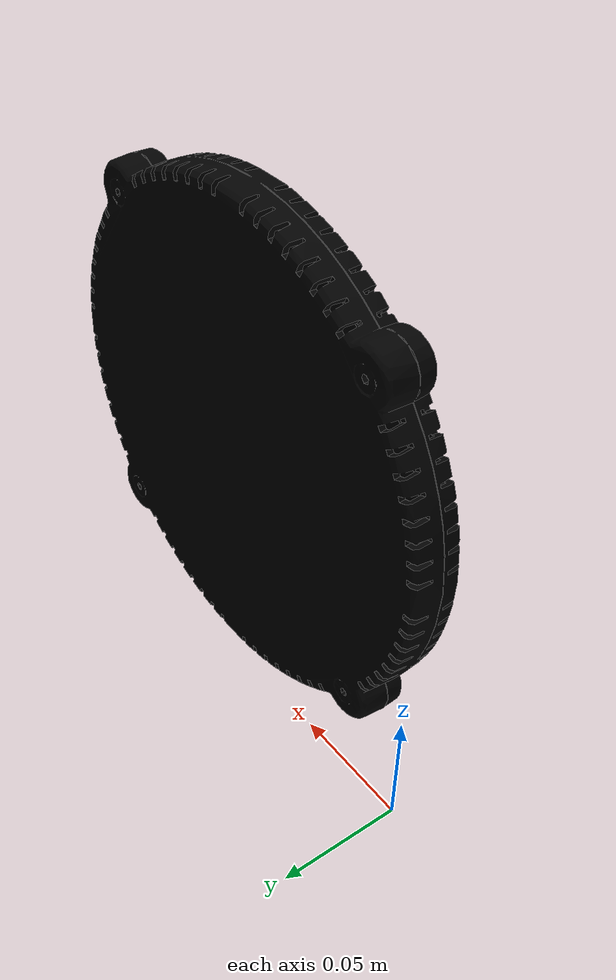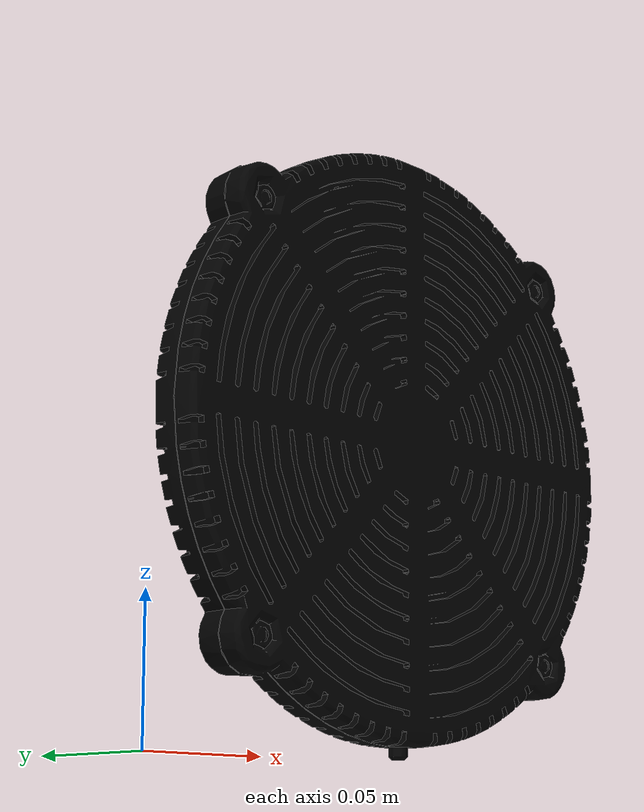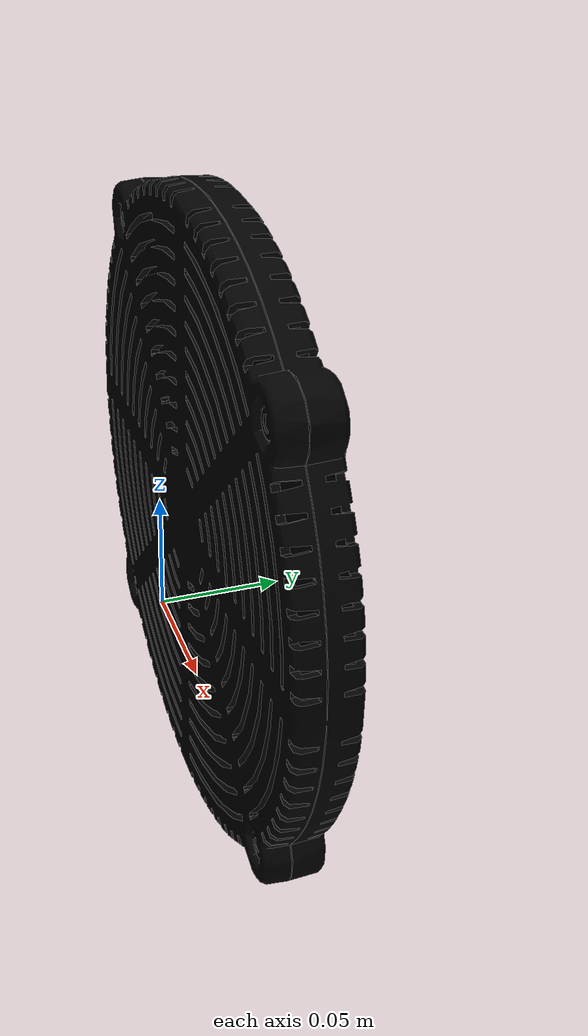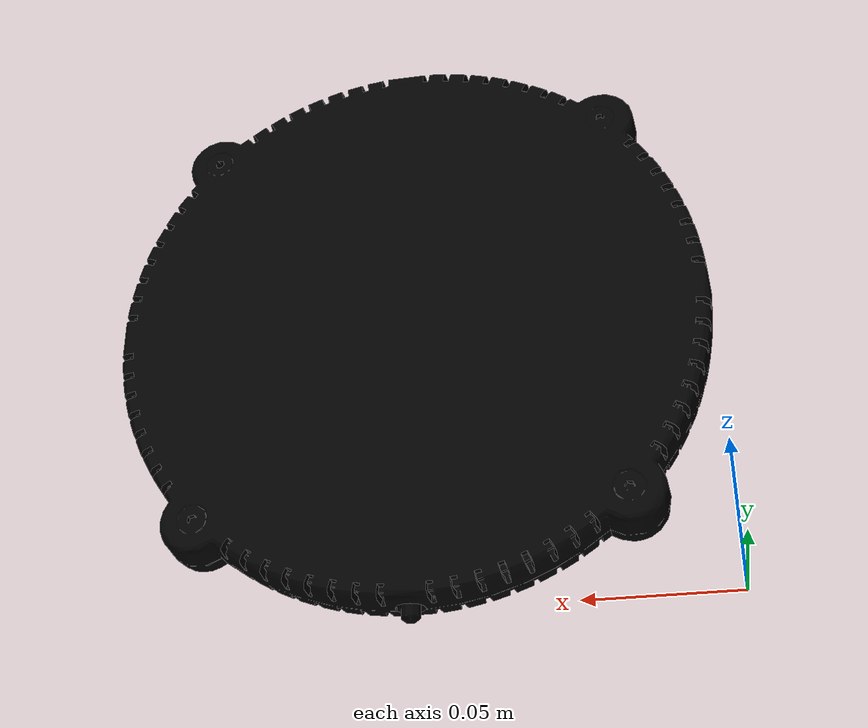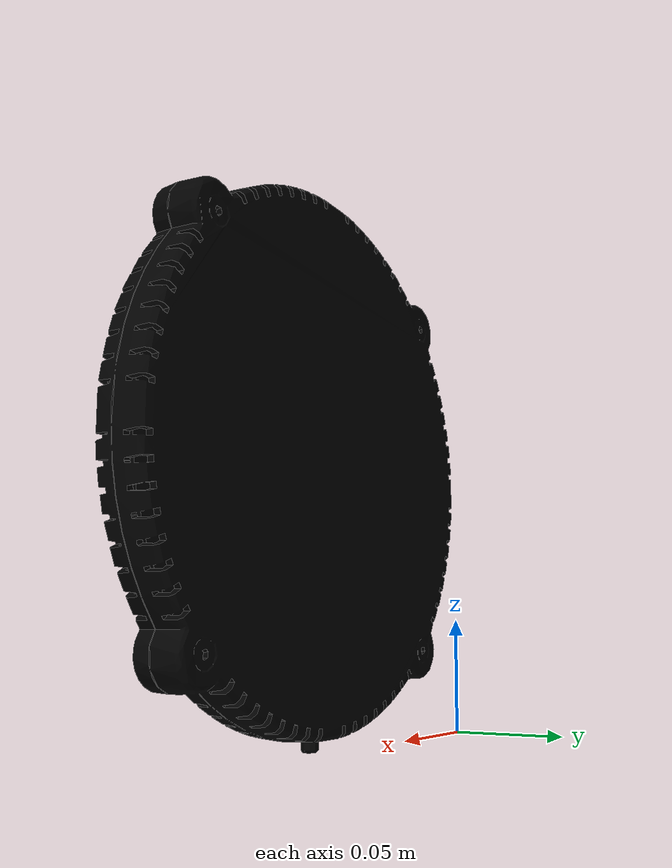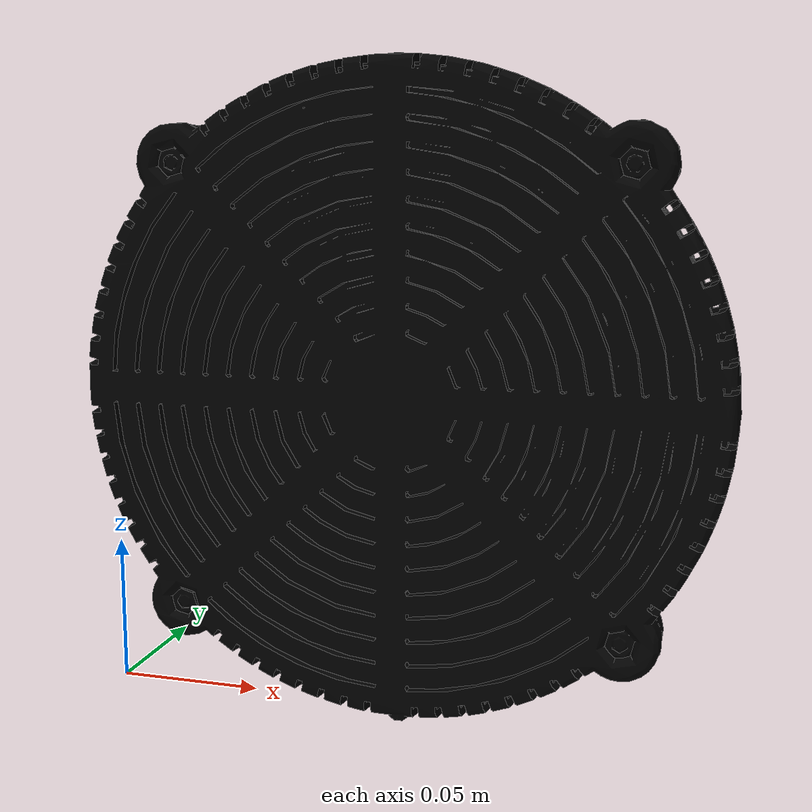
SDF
<?xml version="1.0" ?>
<sdf version="1.6">
  <model name="TC200">
    <plugin name="tx_plugin" filename="libwibotic_coil_plugin.so">
      <coilType>transmit</coilType>
    </plugin>

    <link name="coil_frame"/>

    <joint name="tc200_joint1" type="fixed">
      <parent>coil_frame</parent>
      <child>coil_link</child>
    </joint>

    <link name="coil_link">
      <collision name="collision">
        <geometry>
          <mesh>
            <uri>model://../meshes/TC200_simple.dae</uri>
          </mesh>
        </geometry>
      </collision>
      <!-- Dimensions: x=0.21, y=0.02, z=0.214 -->
      <collision name="COIL_CENTER">
        <pose>0.105 0.01 0.107  0 0 0</pose>
        <geometry>
          <sphere>
            <radius>0.001</radius>
          </sphere>
        </geometry>
      </collision>
      <visual name="visual">
        <geometry>
          <mesh>
            <uri>model://../meshes/TC200.dae</uri>
          </mesh>
        </geometry>
      </visual>
    </link>
  </model>
</sdf>
